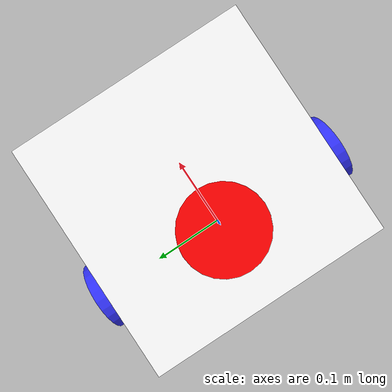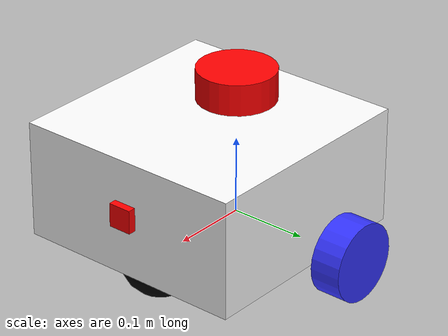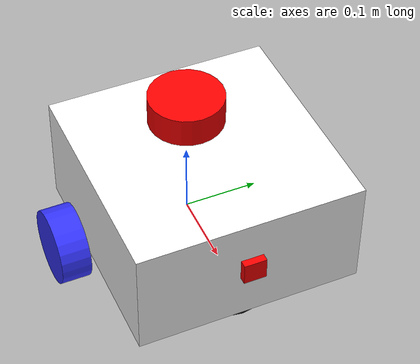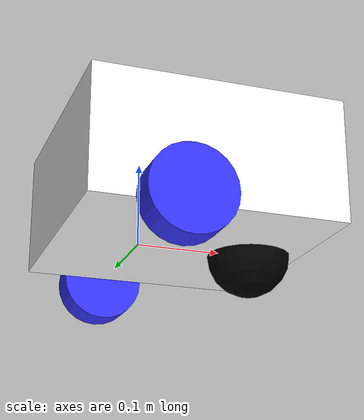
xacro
<?xml version="1.0"?>
<robot xmlns:xacro="http://www.ros.org/wiki/xacro"  name="robot">

    <xacro:arg name="use_ros2_control" default="true"/>
    <xacro:include filename="robot_core.xacro" />

    <xacro:if value="$(arg use_ros2_control)">
        <xacro:include filename="ros2_control.xacro"/>
    </xacro:if>

    <xacro:unless value="$(arg use_ros2_control)">
        <xacro:include filename="gazebo_control.xacro"/>
    </xacro:unless>

    <xacro:include filename="lidar.xacro"/>
    <xacro:include filename="camera.xacro"/>
    <xacro:include filename="imu.xacro"/>

</robot>

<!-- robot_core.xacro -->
<robot xmlns:xacro="http://www.ros.org/wiki/xacro" >

    <xacro:include filename="inertial_macros.xacro"/>

    <material name="white">
        <color rgba="1 1 1 1" />
    </material>

    <material name="orange">
        <color rgba="1 0.3 0.1 1" />
    </material>

    <material name="blue">
        <color rgba="0.2 0.2 1 1" />
    </material>

    <material name="black">
        <color rgba="0 0 0 1" />
    </material>

    <material name="red">
        <color rgba="1 0 0 1" />
    </material>

    <!-- BASE LINK-->

    <link name="base_link">

    </link>

    <!-- BASE_FOOTPRINT LINK -->

    <joint name="base_footprint_joint" type="fixed">
        <parent link="base_link"/>
        <child link="base_footprint"/>
        <origin xyz="0 0 0" rpy="0 0 0"/>
    </joint>

    <link name="base_footprint">
    </link>

    <!--CHASSIS LINK-->

    <joint name="chassis_joint" type="fixed">
        <parent link="base_link"/>
        <child link="chassis"/>
        <origin xyz="-0.1 0 0"/>

    </joint>

    <link name="chassis">
        <visual>
            <origin xyz="0.15 0 0.075"/>
            <geometry>
                <box size="0.3 0.3 0.15"/>
            </geometry>
            <material name="white"/>
        </visual>
        <collision>
            <origin xyz="0.15 0 0.075"/>
            <geometry>
                <box size="0.3 0.3 0.15"/>
            </geometry>
        </collision>
        <xacro:inertial_box mass="0.5" x="0.3" y="0.3" z="0.15">
            <origin xyz="0.15 0 0.075" rpy="0 0 0"/>
        </xacro:inertial_box>

    </link>

    <gazebo reference="chassis">
        <material>Gazebo/White</material>
    </gazebo>

    <!--LEFT WHEEL LINK-->

    <joint name="left_wheel_joint" type="continuous">
        <parent link="base_link"/>
        <child link="left_wheel"/>
        <origin xyz="0 0.175 0" rpy="-${pi/2} 0 0"/>
        <axis xyz="0 0 1"/>
    </joint>

    <link name="left_wheel">
        <visual>
            <geometry>
                <cylinder radius="0.05" length="0.04"/>
            </geometry>
            <material name="blue"/>
        </visual>
        <collision>
            <geometry>
                <cylinder radius="0.05" length="0.04"/>
            </geometry>
        </collision>
        <xacro:inertial_cylinder mass="0.1" length="0.04" radius="0.05">
            <origin xyz="0 0 0" rpy="0 0 0"/>
        </xacro:inertial_cylinder>

    </link>
    <gazebo reference="left_wheel">
        <material>Gazebo/Blue</material>
    </gazebo>

    <!--RIGHT WHEEL LINK-->

    <joint name="right_wheel_joint" type="continuous">
        <parent link="base_link"/>
        <child link="right_wheel"/>
        <origin xyz="0 -0.175 0" rpy="${pi/2} 0 0"/>
        <axis xyz="0 0 -1"/>
    </joint>

    <link name="right_wheel">
        <visual>
            <geometry>
                <cylinder radius="0.05" length="0.04"/>
            </geometry>
            <material name="blue"/>
        </visual>
        <collision>
            <geometry>
                <cylinder radius="0.05" length="0.04"/>
            </geometry>
        </collision>
        <xacro:inertial_cylinder mass="0.1" length="0.04" radius="0.05">
            <origin xyz="0 0 0" rpy="0 0 0"/>
        </xacro:inertial_cylinder>

    </link>
    <gazebo reference="right_wheel">
        <material>Gazebo/Blue</material>
    </gazebo>

    <!-- CASTER WHEEL LINK-->
    <joint name="caster_wheel_joint" type="fixed">
        <parent link="chassis"/>
        <child link="caster_wheel"/>
        <origin xyz="0.24 0 0"/>
    </joint>

    <link name="caster_wheel">
        <visual>
            <geometry>
                <sphere radius="0.05"/>
            </geometry>
            <material name="black"/>
        </visual>
        <collision>
            <geometry>
                <sphere radius="0.05"/>
            </geometry>
        </collision>
        <xacro:inertial_sphere mass="0.1" radius="0.05">
            <origin xyz=" 0 0 0" rpy="0 0 0"/>
        </xacro:inertial_sphere>
    </link>
    <gazebo reference="caster_wheel">
        <material>Gazebo/Black</material>
        <mu1 value="0.001"/>
        <mu2 value="0.001"/>
    </gazebo>
</robot>

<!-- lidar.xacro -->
<robot xmlns:xacro="http://www.ros.org/wiki/xacro">

    <joint name="laser_joint" type="fixed">
        <parent link="chassis"/>
        <child link="laser_frame"/>
        <origin xyz="0.1 0 0.175" rpy="0 0 0"/>
    </joint>

    <link name="laser_frame">
        <visual>
            <geometry>
                <cylinder radius="0.05" length="0.04"/>
            </geometry>
            <material name="red"/>
        </visual>
        <collision>
            <geometry>
                <cylinder radius="0.05" length="0.04"/>
            </geometry>
        </collision>
        <xacro:inertial_cylinder mass="0.1" length="0.04" radius="0.05">
            <origin xyz="0 0 0" rpy="0 0 0"/>
        </xacro:inertial_cylinder>

    </link>
    <gazebo reference="laser_frame">
        <material>Gazebo/Red</material>

        <sensor name="laser" type="ray">
            <pose> 0 0 0 0 0 0 </pose>
            <visualize>true</visualize>
            <update_rate>10</update_rate>
            <ray>
                <scan>
                    <horizontal>
                        <samples>360</samples>
                        <min_angle>-3.14</min_angle>
                        <max_angle>3.14</max_angle>
                    </horizontal>
                </scan>
                <range>
                    <min>0.3</min>
                    <max>12</max>
                </range>
            </ray>
            <plugin name="laser_controller" filename="libgazebo_ros_ray_sensor.so">
                <ros>
                    <argument>~/out:=scan</argument>
                </ros>
                <output_type>sensor_msgs/LaserScan</output_type>
                <frame_name>laser_frame</frame_name>
            </plugin>
        </sensor>
    </gazebo>

</robot>

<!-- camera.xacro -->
<robot xmlns:xacro="http://www.ros.org/wiki/xacro">

    <joint name="camera_joint" type="fixed">
        <parent link="chassis"/>
        <child link="camera_link"/>
        <origin xyz="0.305 0 0.08" rpy="0 0 0"/>
    </joint>

    <link name="camera_link">
        <visual>
            <geometry>
                <box size="0.010 0.03 0.03"/>
            </geometry>
            <material name="red"/>
        </visual>
    </link>

    <joint name="camera_optical_joint" type="fixed">
        <parent link="camera_link"/>
        <child link="camera_link_optical"/>
        <origin xyz="0 0 0" rpy="${-pi/2} 0 ${-pi/2}"/>
    </joint>

    <link name="camera_link_optical"></link>

    <gazebo reference="camera_link">
        <material>Gazebo/Red</material>

        <sensor name="camera" type="camera">
            <pose> 0 0 0 0 0 0 </pose>
            <visualize>true</visualize>
            <update_rate>10</update_rate>
            <camera>
                <horizontal_fov>1.089</horizontal_fov>
                <image>
                    <format>R8G8B8</format>
                    <width>640</width>
                    <height>480</height>
                </image>
                <clip>
                    <near>0.05</near>
                    <far>8.0</far>
                </clip>
            </camera>
            <plugin name="camera_controller" filename="libgazebo_ros_camera.so">
                <frame_name>camera_link_optical</frame_name>
            </plugin>
        </sensor>
    </gazebo>

</robot>

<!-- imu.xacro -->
<robot xmlns:xacro="http://www.ros.org/wiki/xacro">

    <joint name="imu_joint" type="fixed">
        <parent link="base_link"/>
        <child link="imu_link"/>
        <origin xyz="0.05 0 0.10" rpy="0 0 0"/>
    </joint>

    <link name="imu_link">
        <visual>
            <geometry>
                <box size="0.03 0.03 0.01"/>
            </geometry>
        </visual>

        <collision>
            <geometry>
                <box size="0.03 0.03 0.01"/>
            </geometry>
        </collision>

        <inertial>
            <origin xyz="0 0 0"/>
            <mass value="0.01"/>
            <inertia
                ixx="1e-6"
                ixy="0"
                ixz="0"
                iyy="1e-6"
                iyz="0"
                izz="1e-6"/>
        </inertial>
    </link>

    <gazebo reference="imu_link">
        <sensor name="imu_sensor" type="imu">
            <always_on>true</always_on>
            <update_rate>100</update_rate>
            <visualize>true</visualize>

            <plugin filename="libgazebo_ros_imu_sensor.so" name="imu_plugin">
            <ros>
                <namespace>/</namespace>
                <remapping>~/out:=imu/data</remapping>
            </ros>

            <frame_name>imu_link</frame_name>
            <initial_orientation_as_reference>false</initial_orientation_as_reference>
            </plugin>
        </sensor>
    </gazebo>

</robot>
